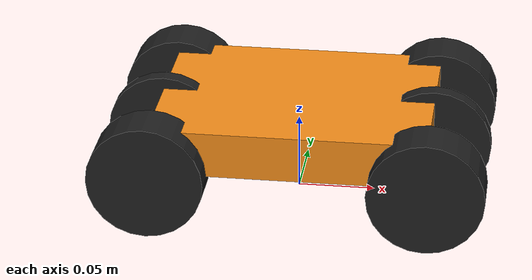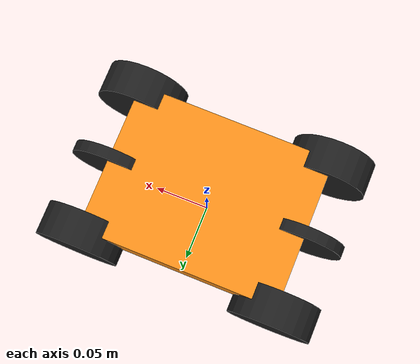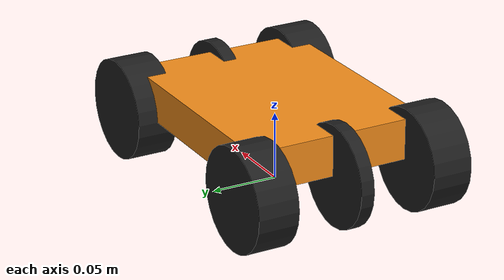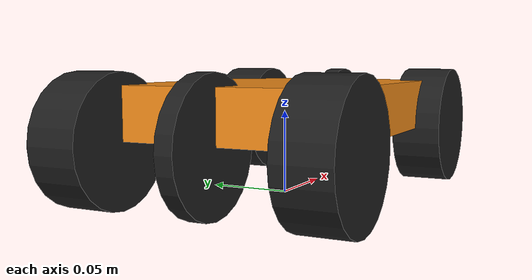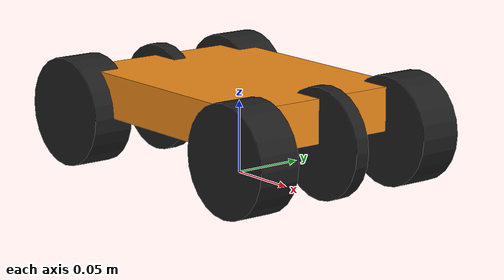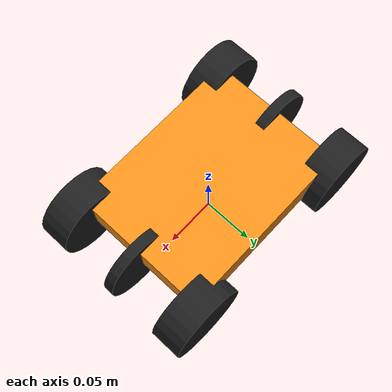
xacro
<?xml version="1.0"?>
<!-- 4 Wheel Robot with front steering and rear drive -->
<robot xmlns:xacro="http://www.ros.org/wiki/xacro" name="carlikebot_robot">
  <xacro:arg name="prefix" default="" />
  <xacro:arg name="sim_mode" default="false"/>

  <!-- Import Robot Description -->
  <xacro:include filename="$(find carbot_hardware)/urdf/bigbrain.urdf.xacro" />

  <!-- Import Rviz colors -->
  <xacro:include filename="$(find carbot_hardware)/urdf/carlikebot.materials.xacro" />

  <!-- Import Hardware Interface -->
  <xacro:include filename="$(find carbot_hardware)/ros2_control/carlikebot.ros2_control.xacro" />

  <xacro:carlikebot prefix="$(arg prefix)" />

  <xacro:carlikebot_ros2_control name="CarlikeBot" prefix="$(arg prefix)" />

</robot>

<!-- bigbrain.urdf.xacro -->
<robot xmlns:xacro="http://www.ros.org/wiki/xacro">

  <xacro:macro name="carlikebot" params="prefix">

  <!-- Constants for robot dimensions -->
  <xacro:property name="PI" value="3.1415926535897931"/>
  <xacro:property name="base_mass" value="10" /> <!-- arbitrary value for base mass -->
  <xacro:property name="base_width" value="0.1351" />
  <xacro:property name="base_length" value="0.1778" />
  <xacro:property name="base_height" value="0.030" />
  <xacro:property name="wheelbase" value="0.1778" />
  <xacro:property name="wheel_mass" value="0.34055" /> <!-- arbitrary value for wheel mass -->
  <xacro:property name="wheel_len" value="0.03" />
  <xacro:property name="wheel_radius" value="0.0375" />
  <xacro:property name="wheeltrack" value=".1651"/>
  <xacro:property name="friction" value="3"/>
  <xacro:property name="damping" value="0.01"/>

  <!-- Base Link -->
  <link name="${prefix}base_link" />

  <!-- Chassis -->

  <link name="${prefix}chassis_link">

    <visual>
      <origin xyz="0 0 0" rpy="0 0 0"/>
      <geometry>
        <box size="${base_length} ${base_width} ${base_height}"/>
      </geometry>
      <material name="orange"/>
    </visual>

    <inertial>
      <origin xyz="0 0 0" rpy="0 0 0"/>
      <mass value="${base_mass}"/>
        <inertia
          ixx="0.000270" ixy="0.0" ixz="0.0"
          iyy="0.000270" iyz="0.0"
          izz="0.000426"/>
      </inertial>
  </link>

    <gazebo reference="chassis_link">
      <material>Gazebo/Orange</material>
    </gazebo>

    <joint name="${prefix}chassis_joint" type="fixed">
      <parent link="${prefix}base_link"/>
      <child link="${prefix}chassis_link"/>
      <origin xyz="0 0 ${base_height/2 + wheel_radius}" rpy="0 0 0"/>
      <axis xyz="0 0 1"/>
      <dynamics damping="${damping}"/>
    </joint>

    <xacro:macro name="rear_wheel" params="name x y z direction">
        <link name="${name}_wheel">
            <collision>
                <origin xyz="0 0 0" rpy="${PI/2} 0 ${PI/2}"/>
                <geometry>
                  <cylinder length="${wheel_len}" radius="${wheel_radius}"/>
                </geometry>

                <surface>
                  <friction>
                    <ode>
                      <mu value="${friction}"/>
                      <mu2 value="${friction}"/>
                    </ode>
                  </friction>
                </surface>
            </collision>

            <visual>
                <origin xyz="0 0 0" rpy="${PI/2} 0 ${PI/2}"/>

                <geometry>
                    <cylinder length="${wheel_len}" radius="${wheel_radius}"/>
                </geometry>

                <material name="black"/>
            </visual>

            <inertial>
                <origin xyz="0 0 0" rpy="${PI/2} 0 ${PI/2}"/>
                <mass value="${wheel_mass}"/>
                <inertia
                    ixx="0.000270" ixy="0.0" ixz="0.0"
                    iyy="0.000270" iyz="0.0"
                    izz="0.000426"/>
            </inertial>
        </link>

        <gazebo reference="${name}_wheel">
            <material>Gazebo/Black</material>
          </gazebo>

        <joint name="${name}_wheel_joint" type="continuous">
            <parent link="${prefix}chassis_link"/>
            <child link="${name}_wheel"/>
            <origin xyz="-${wheelbase/2} ${base_width/2 * direction} -${base_height/2}" rpy="0 0 ${PI/2}"/>
            <axis xyz="1 0 0"/>
            <limit effort="1000.0" velocity="100.0"/>
            <dynamics damping="${damping}"/>

            <mimic joint="${prefix}virtual_rear_wheel_joint" multiplier="1.0" offset="0.0"/>
        </joint>

    </xacro:macro>

    <xacro:macro name="front_wheel" params="name x y z direction">
        <link name="${name}_wheel">
            <collision>
                <origin xyz="0 0 0" rpy="0 ${PI/2} 0"/>
                <geometry>
                  <cylinder length="${wheel_len}" radius="${wheel_radius}"/>
                </geometry>

                <surface>
                  <friction>
                    <ode>
                      <mu value="${friction}"/>
                      <mu2 value="${friction}"/>
                    </ode>
                  </friction>
                </surface>
            </collision>

            <visual>
                <origin xyz="0 0 0" rpy="0 ${PI/2} 0"/>

                <geometry>
                    <cylinder length="${wheel_len}" radius="${wheel_radius}"/>
                </geometry>

                <material name="black"/>
            </visual>

            <inertial>
                <origin xyz="0 0 0" rpy="0 ${PI/2} 0"/>
                <mass value="${wheel_mass}"/>
                <inertia
                    ixx="0.000270" ixy="0.0" ixz="0.0"
                    iyy="0.000270" iyz="0.0"
                    izz="0.000426"/>
            </inertial>
        </link>

        <link name="${name}_steer">
            <inertial>
                <origin xyz="0 0 0" rpy="${PI/2} 0 ${PI/2}"/>
                <mass value="${wheel_mass}"/>
                <inertia
                    ixx="0.000270" ixy="0.0" ixz="0.0"
                    iyy="0.000270" iyz="0.0"
                    izz="0.000426"/>
            </inertial>
        </link>

        <gazebo reference="${name}_wheel">
            <material>Gazebo/Black</material>
          </gazebo>

        <joint name="${name}_wheel_joint" type="continuous">
            <parent link="${name}_steer"/>
            <child link="${name}_wheel"/>
            <origin xyz="0 0 0" rpy="0 0 0"/>
            <axis xyz="1 0 0"/>
            <limit effort="100.0" velocity="100.0"/>
            <dynamics damping="${damping}"/>
            <mimic joint="${prefix}virtual_rear_wheel_joint" multiplier="1.0" offset="0.0"/>
        </joint>

        <joint name="${name}_steer_joint" type="revolute">
            <parent link="${prefix}chassis_link"/>
            <child link="${name}_steer"/>
            <origin xyz="${wheelbase/2} ${base_width/2 * direction} -${base_height/2}" rpy="0 0 ${PI/2}"/>
            <axis xyz="0 0 1"/>
            <limit lower="-0.5" upper="0.5" effort="1000.0" velocity="0.0000001"/>
            <dynamics damping="${damping}"/>

            <mimic joint="${prefix}virtual_front_wheel_joint" multiplier="1.0" offset="0.0"/>
        </joint>

    </xacro:macro>

    <xacro:front_wheel name="front_left" x="0" y="0" z="0" direction="-1"/>
    <xacro:front_wheel name="front_right" x="0" y="0" z="0" direction="1"/>
    <xacro:rear_wheel name="rear_left" x="0" y="0" z="0" direction="-1"/>
    <xacro:rear_wheel name="rear_right" x="0" y="0" z="0" direction="1"/>

    <!-- virtual rear wheel -->

    <link name="${prefix}virtual_rear_wheel">

      <visual>
        <origin xyz="0 0 0" rpy="${PI/2} 0 ${PI/2}"/>
        <geometry>
          <cylinder length="0.01" radius="${wheel_radius}"/>
        </geometry>

        <material name="invisible"/>
      </visual>

      <inertial>
        <origin xyz="0 0 0" rpy="${PI/2} 0 ${PI/2}"/>
        <mass value="${wheel_mass}"/>
        <inertia
          ixx="0.000270" ixy="0.0" ixz="0.0"
          iyy="0.000270" iyz="0.0"
          izz="0.000426"/>
      </inertial>

    </link>

    <gazebo reference="${prefix}virtual_rear_wheel">
      <material>Gazebo/Black</material>
    </gazebo>

    <joint name="${prefix}virtual_rear_wheel_joint" type="continuous">
      <parent link="${prefix}chassis_link"/>
      <child link="${prefix}virtual_rear_wheel"/>
      <origin xyz="-${wheelbase/2} 0 -${base_height/2}" rpy="0 0 ${PI/2}"/>
      <axis xyz="1 0 0"/>
      <limit effort="100.0" velocity="100.0"/>
      <dynamics damping="${damping}"/>
    </joint>

    <link name="${prefix}virtual_front_wheel">

      <visual>
        <origin xyz="0 0 0" rpy="${PI/2} 0 ${PI/2}"/>
        <geometry>
          <cylinder length="0.01" radius="${wheel_radius}"/>
        </geometry>

        <material name="invisible"/>
      </visual>

      <inertial>
        <origin xyz="0 0 0" rpy="${PI/2} 0 ${PI/2}"/>
        <mass value="${wheel_mass}"/>
        <inertia
          ixx="0.000270" ixy="0.0" ixz="0.0"
          iyy="0.000270" iyz="0.0"
          izz="0.000426"/>
      </inertial>

    </link>

    <gazebo reference="${prefix}virtual_front_wheel">
      <material>Gazebo/Black</material>
    </gazebo>

    <joint name="${prefix}virtual_front_wheel_joint" type="revolute">
      <parent link="${prefix}chassis_link"/>
      <child link="${prefix}virtual_front_wheel"/>
      <origin xyz="${wheelbase/2} 0 -${base_height/2}" rpy="0 0 ${PI/2}"/>
      <axis xyz="0 0 1"/>
      <limit lower="-0.4" upper="0.4" effort="100.0" velocity="100.0"/>
      <dynamics damping="${damping}"/>
    </joint>

  </xacro:macro>

</robot>
